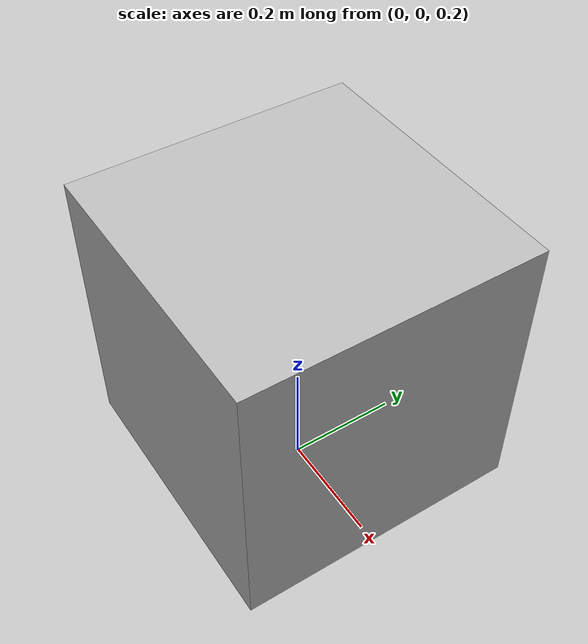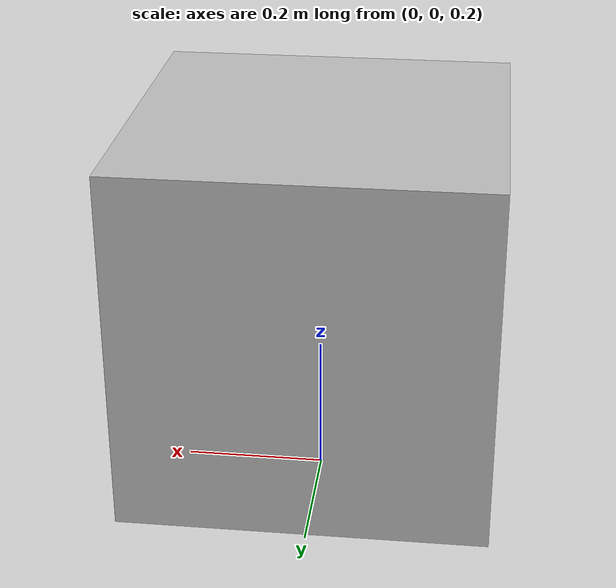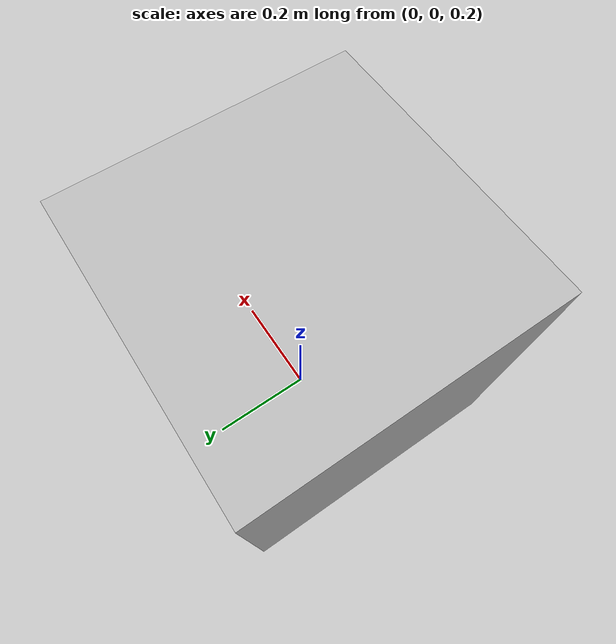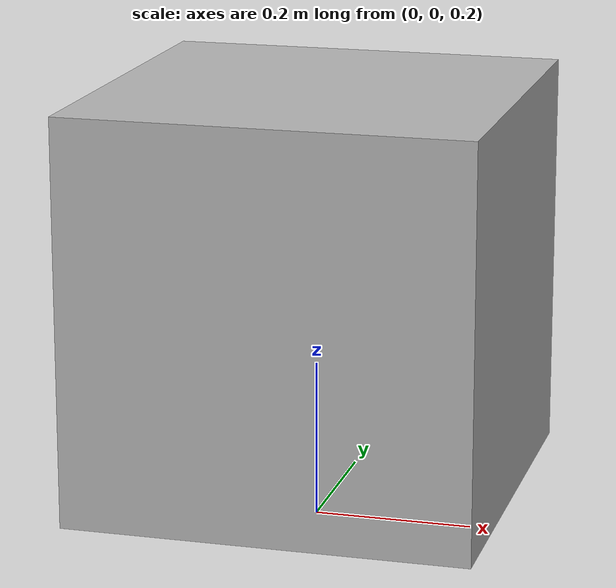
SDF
<?xml version="1.0"?>
<sdf version="1.4">
  <world name="default">

    <model name="box">
      <link name="link">
        <pose>0 0 0.5 0 0 0</pose>

        <collision name="box_collision">
          <geometry>
	    <mesh>
	      <uri>model://gazebo_ray_trace/sdf/box.stl</uri>
	      <scale>0.0254 0.0254 0.0254</scale>
	    </mesh>
          </geometry>

        </collision>

        <visual name="visual">
          <geometry>
	    <mesh>
	      <uri>model://gazebo_ray_trace/sdf/box.stl</uri>
	      <scale>0.0254 0.0254 0.0254</scale>
	    </mesh>
          </geometry>
        </visual>
      </link>
    </model>
    <plugin filename="libdistance_ray_trace.so" name="ray_tracer"/>
  </world>
</sdf>
